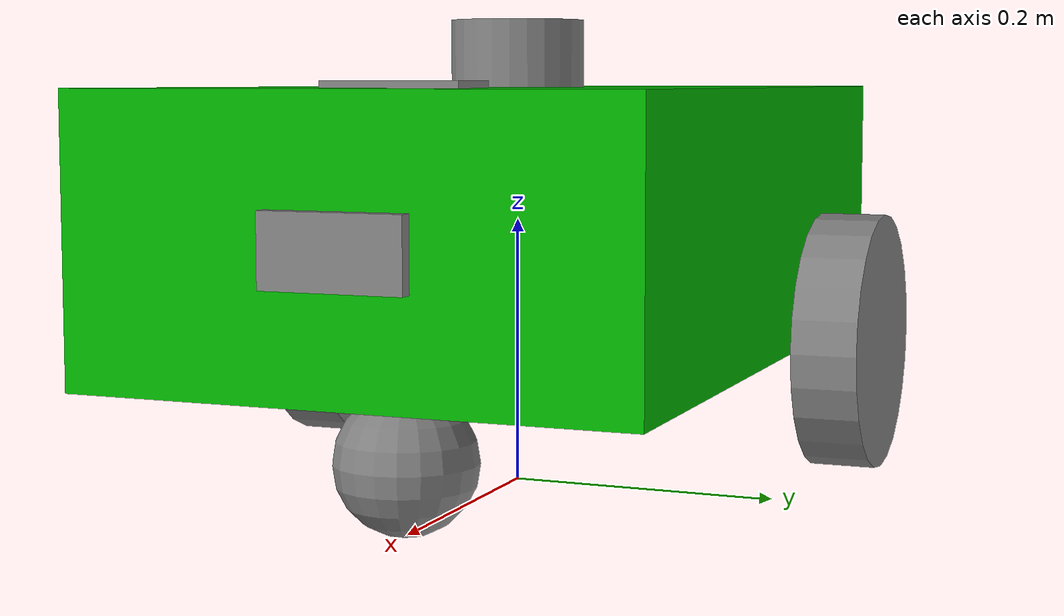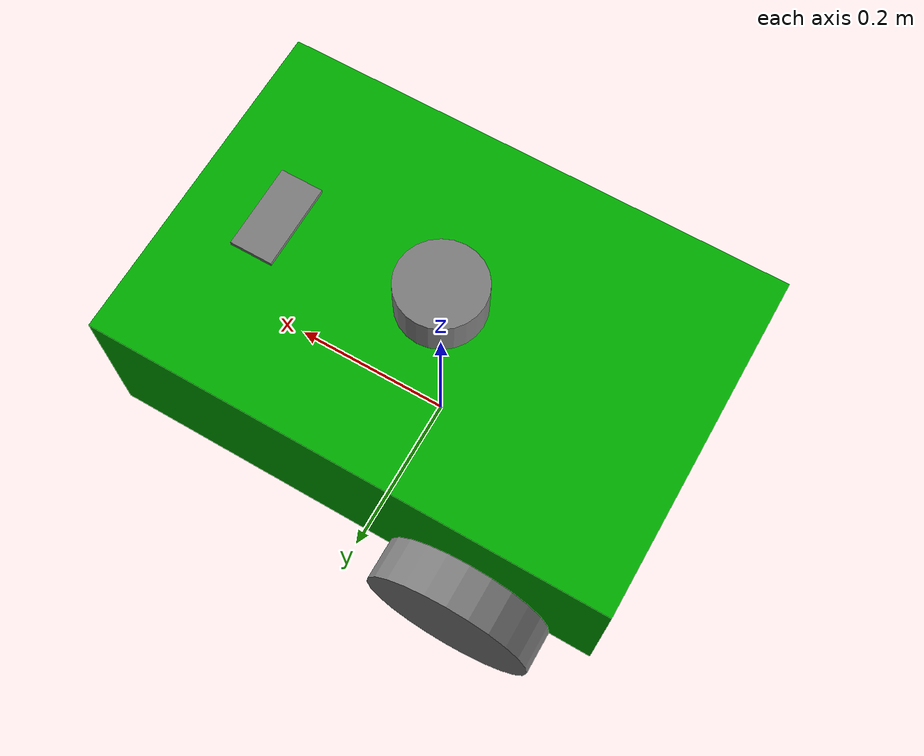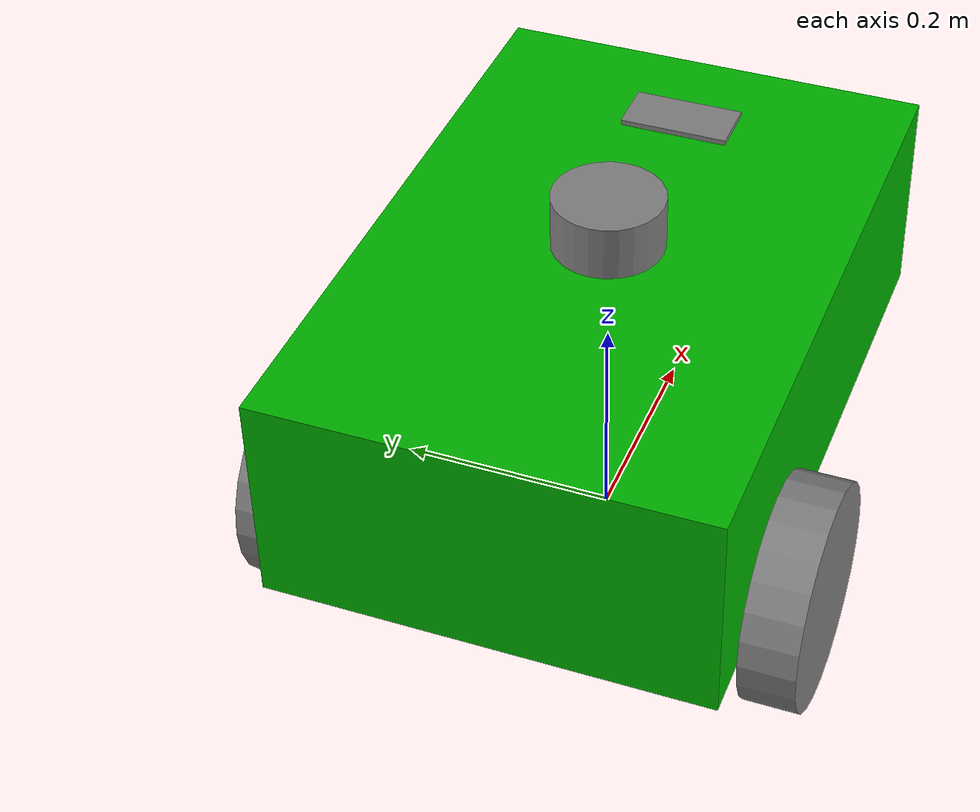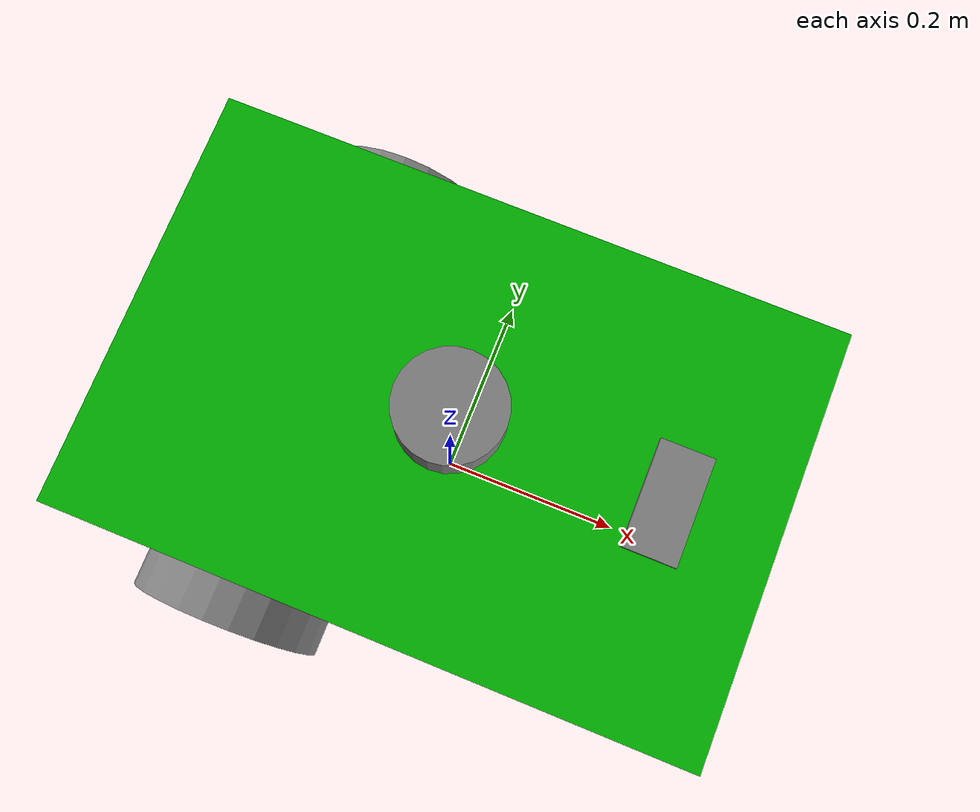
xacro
<?xml version="1.0"?>
<robot name = "my_robot" xmlns:xacro="http://www.ros.org/wiki/xacro">

    <xacro:include filename="properties.xacro"/>
    <xacro:include filename="mobile_base.xacro"/>
    <xacro:include filename="mobile_base_gazebo.xacro"/>
    <xacro:include filename="camera.xacro"/>
    <xacro:include filename="lidar.xacro"/>
    <xacro:include filename="imu.xacro"/>

</robot>

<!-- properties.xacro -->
<robot xmlns:xacro="http://www.ros.org/wiki/xacro">

    <material name="green">
        <color rgba = " 0 0.7 0 1"></color>
    </material>

    <material name="blue">
        <color rgba = " 0 0 0.7 1"></color>
    </material>

    <material name="grey">
        <color rgba = " 0.5 0.5 0.5 1"></color>
    </material>

    <xacro:macro name="box_inertia" params="m l w h xyz rpy">
        <inertial>
            <origin xyz="${xyz}" rpy="${rpy}"/>
            <mass value="${m}"/>
            <inertia ixx = "${(m / 12)*((h*h)+(l*l))}" ixy = "0" ixz = "0"
                     iyy = "${(m / 12)*((w*w)+(l*l))}" iyz = "0"
                     izz = "${(m / 12)*((h*h)+(w*w))}"/>
        </inertial>
    </xacro:macro>

    <xacro:macro name="cylinder_inertia" params="r h m xyz rpy">
        <inertial>
            <origin xyz="${xyz}" rpy="${rpy}"/>
            <mass value="${m}"/>
            <inertia ixx = "${(m / 12)*((3*r*r)+(h*h))}" ixy = "0" ixz = "0"
                     iyy = "${(m / 12)*((3*r*r)+(h*h))}" iyz = "0"
                     izz = "${(m/2)*(r*r)}"/>
        </inertial>
    </xacro:macro>

    <xacro:macro name="sphere_inertia" params="r m xyz rpy">
        <inertial>
            <origin xyz="${xyz}" rpy="${rpy}"/>
            <mass value="${m}"/>
            <inertia ixx = "${(2/5)*m*(r*r)}" ixy = "0" ixz = "0"
                     iyy = "${(2/5)*m*(r*r)}" iyz = "0"
                     izz = "${(2/5)*m*(r*r)}"/>
        </inertial>
    </xacro:macro>

</robot>

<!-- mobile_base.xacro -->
<robot xmlns:xacro="http://www.ros.org/wiki/xacro">

    <xacro:property name="base_length" value="0.6"></xacro:property>
    <xacro:property name="base_width" value="0.4"></xacro:property>
    <xacro:property name="base_height" value="0.2"></xacro:property>
    <xacro:property name="wheel_radius" value="0.1"></xacro:property>
    <xacro:property name="wheel_length" value="0.05"></xacro:property>

    <link name = "base_footlink">
    </link>

    <link name = "base_link">
        <visual>
            <geometry>
                <box size="${base_length} ${base_width} ${base_height}"></box>
            </geometry>
            <origin xyz ="0 0 ${base_height / 2.0}" rpy ="0 0 0"></origin>
            <material name = "green"></material>
        </visual>
        <collision>
            <geometry>
                <box size="${base_length} ${base_width} ${base_height}"></box>
            </geometry>
            <origin xyz ="0 0 ${base_height / 2.0}" rpy ="0 0 0"></origin>
        </collision>
        <xacro:box_inertia m="5.0" l="${2*base_length}" w="${2*base_width}" h="${2*base_height}"
                           xyz="0 0 ${base_height / 2.0}" rpy="0 0 0"/>
    </link>

    <xacro:macro name = "wheel_link" params = "prefix">
        <link name="${prefix}_wheel_link">
            <visual>
                <geometry>
                    <cylinder radius="${wheel_radius}" length="${wheel_length}"></cylinder>
                </geometry>
                <origin xyz ="0 0 0" rpy ="${pi/2} 0 0"></origin>
                <material name = "grey"></material>
            </visual>

            <collision>
                <geometry>
                    <cylinder radius="${wheel_radius}" length="${wheel_length}"></cylinder>
                </geometry>
                <origin xyz ="0 0 0" rpy ="${pi/2} 0 0"></origin>
            </collision>

            <xacro:cylinder_inertia r="${2*wheel_radius}" h="${2*wheel_length}" m="1.0"
                                    xyz="0 0 0" rpy="${pi/2} 0 0" />
        </link>
    </xacro:macro>

    <xacro:wheel_link prefix = "right"></xacro:wheel_link>
    <xacro:wheel_link prefix = "left"></xacro:wheel_link>

    <link name = "caster_wheel_link">
        <visual>
            <geometry>
                <sphere radius="${wheel_length}"/>
            </geometry>
            <origin xyz ="0 0 0" rpy ="0 0 0"></origin>
            <material name = "grey"></material>
        </visual>
        <collision>
            <geometry>
                <sphere radius="${wheel_length}"/>
            </geometry>
            <origin xyz ="0 0 0" rpy ="0 0 0"></origin>
        </collision>
        <xacro:sphere_inertia r="${2*wheel_length}" m="0.5"
                              xyz="0 0 0" rpy="0 0 0"/>
    </link>

    <joint name="base_right_wheel_joint" type="continuous">
        <parent link="base_link"/>
        <child link="right_wheel_link"/>
        <origin xyz="${-base_length / 4.0} ${(base_width+ 0.05)/2} 0.0" rpy="0 0.0 0.0"/>
        <axis xyz="0 1 0"/>
    </joint>
    <joint name="base_left_wheel_joint" type="continuous">
        <parent link="base_link"/>
        <child link="left_wheel_link"/>
        <origin xyz="${-base_length / 4.0} ${-(base_width+ 0.05)/2} 0.0" rpy="0 0.0 0.0"/>
        <axis xyz="0 1 0"/>
    </joint>
    <joint name="base_caster_wheel_joint" type="fixed">
        <parent link="base_link"/>
        <child link="caster_wheel_link"/>
        <origin xyz="${base_length / 3.0}  0 ${-wheel_radius/2}" rpy="0 0.0 0.0"/>
    </joint>
    <joint name="base_joint" type="fixed">
        <parent link="base_footlink"/>
        <child link="base_link"/>
        <origin xyz="0 0 ${wheel_radius}" rpy="0 0.0 0.0"/>
    </joint>
</robot>

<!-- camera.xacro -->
<robot xmlns:xacro="http://www.ros.org/wiki/xacro">

    <xacro:property name="camera_length" value="0.01"></xacro:property>
    <xacro:property name="camera_width" value="0.1"></xacro:property>
    <xacro:property name="camera_height" value="0.05"></xacro:property>
    <link name="camera_link">
        <visual>
            <geometry>
                <box size="${camera_length} ${camera_width} ${camera_height}"/>
            </geometry>
            <material name="grey">
            </material>
        </visual>
        <collision>
            <geometry>
                <box size="${camera_length} ${camera_width} ${camera_height}"/>
            </geometry>
        </collision>
        <xacro:box_inertia m="0.1" l="${camera_length}" w="${camera_width}" h="${camera_height}"
                           xyz="0 0 0" rpy="0 0 0"></xacro:box_inertia>
    </link>
    <joint name="base_camera_joint" type="fixed">
        <parent link="base_link"/>
        <child link="camera_link"/>
        <origin xyz="${(camera_length + base_length) / 2.0} 0 ${base_height / 2.0}" rpy="0 0 0" />
    </joint>
    <gazebo reference = "camera_link">
        <material>Gazebo/Red</material>
        <sensor name="camera_sensor" type="camera">
            <pose>0 0 0 0 0 0</pose>
            <visualize>true</visualize>
            <update_rate>10.0</update_rate>
            <plugin name="camera_controller" filename="libgazebo_ros_camera.so">
                <frame_name>camera_link</frame_name>
            </plugin>
        </sensor>
    </gazebo>
</robot>

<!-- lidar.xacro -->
<robot xmlns:xacro="http://www.ros.org/wiki/xacro" >
    <xacro:property name="lidar_length" value="0.05"></xacro:property>
    <xacro:property name="lidar_radius" value="0.05"></xacro:property>

    <link name="lidar_link">
        <visual>
            <geometry>
                <cylinder radius="${lidar_radius}" length="${lidar_length}"></cylinder>
            </geometry>
            <material name="grey">
            </material>
        </visual>
        <collision>
            <geometry>
                <cylinder radius="${lidar_radius}" length="${lidar_length}"></cylinder>
            </geometry>
        </collision>
        <xacro:cylinder_inertia r="${2*lidar_radius}" h="${2*lidar_length}" m="1.0"
                                    xyz="0 0 0" rpy="${pi/2} 0 0" />
    </link>

    <joint name="base_lidar_joint" type="fixed">
        <parent link="base_link"/>
        <child link="lidar_link"/>
        <origin xyz="0 0 ${base_height+(lidar_length / 2)}" rpy="0 0 0" />
    </joint>

    <gazebo reference="lidar_link">
        <material>Gazebo/Red</material>
        <sensor name="laser" type="ray">
            <pose> 0 0 0 0 0 0 </pose>
            <visualize>true</visualize>
            <update_rate>10</update_rate>
            <ray>
                <scan>
                    <horizontal>
                        <samples>360</samples>
                        <resolution>1</resolution>
                        <min_angle>-3.14</min_angle>
                        <max_angle>3.14</max_angle>
                    </horizontal>
                </scan>
                <range>
                    <min>0.3</min>
                    <max>12</max>
                    <resolution>0.01</resolution>
                </range>
                <noise>
                    <type>gaussian</type>
                    <mean>0.0</mean>
                    <stddev>0.01</stddev>
                  </noise>
            </ray>
            <plugin name="lidar" filename="libgazebo_ros_ray_sensor.so">
                <ros>
                    <remapping>~/out:=scan</remapping>
                </ros>
                <output_type>sensor_msgs/LaserScan</output_type>
                <frame_name>lidar_link</frame_name>

            </plugin>
        </sensor>
    </gazebo>

</robot>

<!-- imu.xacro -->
<robot xmlns:xacro="http://www.ros.org/wiki/xacro">

    <xacro:property name="imu_length" value="0.01"></xacro:property>
    <xacro:property name="imu_width" value="0.1"></xacro:property>
    <xacro:property name="imu_height" value="0.05"></xacro:property>

    <link name="imu_link">
        <visual>
            <geometry>
                <box size="${imu_length} ${imu_width} ${imu_height}"/>
            </geometry>
            <material name="grey">
            </material>
        </visual>
        <collision>
            <geometry>
                <box size="${imu_length} ${imu_width} ${imu_height}"/>
            </geometry>
        </collision>
        <xacro:box_inertia m="0.1" l="${imu_length}" w="${imu_width}" h="${imu_height}"
                           xyz="0 0 0" rpy="0 0 0"></xacro:box_inertia>
    </link>

    <joint name="base_imu_joint" type="fixed">
        <parent link="base_link"/>
        <child link="imu_link"/>
        <origin xyz="${2* imu_width} 0 ${base_height}" rpy="0 ${pi/2} 0" />
    </joint>

    <gazebo reference="imu_link">
        <material>Gazebo/Red</material>
        <sensor name="my_imu" type="imu">
            <always_on>true</always_on>
            <update_rate>100</update_rate>
            <plugin name="imu_link" filename="libgazebo_ros_imu_sensor.so">
                <ros>
                  <remapping>~/out:=imu</remapping>
                </ros>
              </plugin>
          </sensor>
      </gazebo>

</robot>
